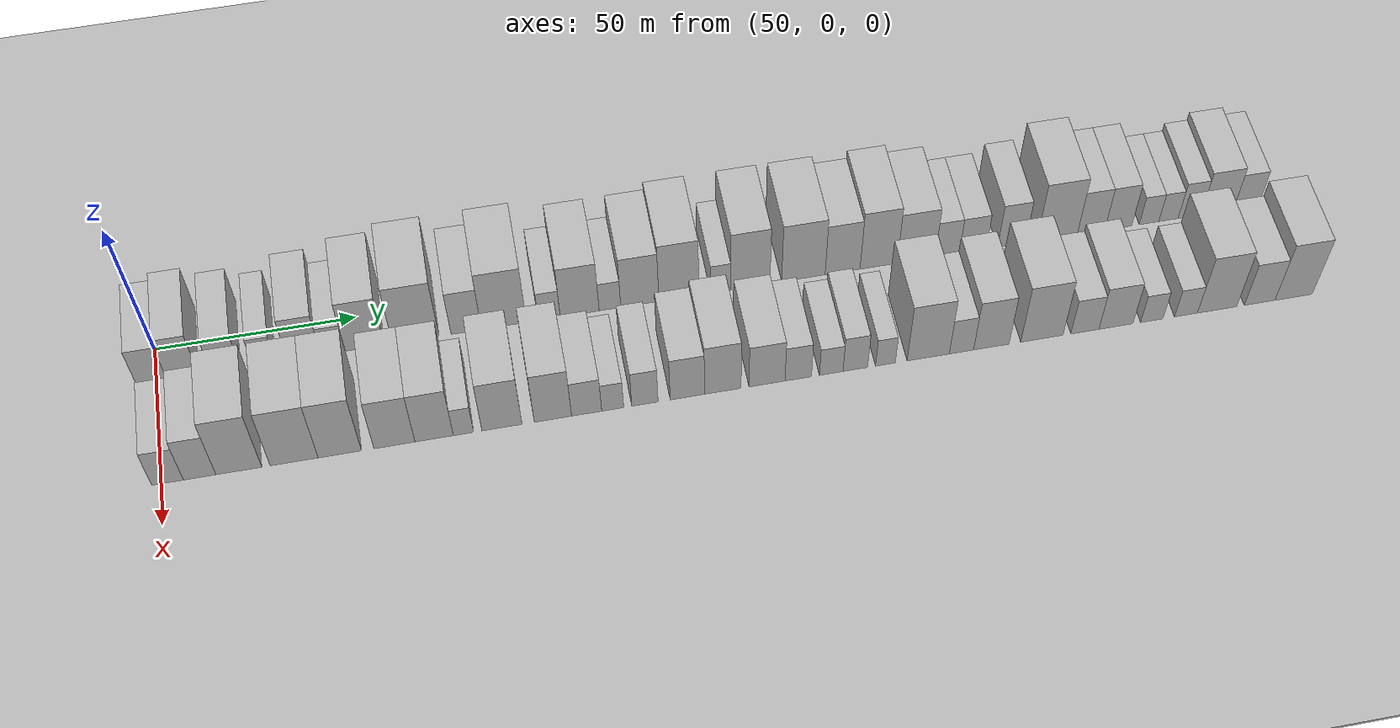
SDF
<sdf version="1.6">
 <world name="default">
  <include><name>ground_plane_1</name><uri>model://HANNAS_ground_plane</uri></include>
  <include>
   <name>ground_plane_2</name>
   <uri>model://HANNAS_ground_plane</uri>
   <pose>100 0 0  0 0 0</pose>
  </include>
  <model name="building_33">
   <static>1</static>
   <pose>50.0000 -0.9373 0 0.000000 0.000000 0.000000</pose>
   <link name="link">
    <pose>0 0 7.50 0 0 0</pose>
    <collision name="collision"><geometry><box><size>20.0000 7.4293 15.0000</size></box></geometry></collision>
    <visual name="visual">
     <cast_shadows>0</cast_shadows>
     <geometry><box><size>20.0000 7.4293 15.0000</size></box></geometry>
     <material>
      <script>
       <uri>model://HANNAS_wall/materials/scripts</uri>
       <uri>model://HANNAS_wall/materials/textures</uri>
       <name>vrc/HANNAS_wall</name>
      </script>
     </material>
    </visual>
   </link>
  </model>
  <model name="building_34">
   <static>1</static>
   <pose>50.0000 6.6551 0 0.000000 0.000000 0.000000</pose>
   <link name="link">
    <pose>0 0 9.00 0 0 0</pose>
    <collision name="collision"><geometry><box><size>20.0000 7.7553 18.0000</size></box></geometry></collision>
    <visual name="visual">
     <cast_shadows>0</cast_shadows>
     <geometry><box><size>20.0000 7.7553 18.0000</size></box></geometry>
     <material>
      <script>
       <uri>model://HANNAS_wall/materials/scripts</uri>
       <uri>model://HANNAS_wall/materials/textures</uri>
       <name>vrc/HANNAS_wall</name>
      </script>
     </material>
    </visual>
   </link>
  </model>
  <model name="building_35">
   <static>1</static>
   <pose>50.0000 17.1252 0 0.000000 0.000000 0.000000</pose>
   <link name="link">
    <pose>0 0 7.50 0 0 0</pose>
    <collision name="collision"><geometry><box><size>20.0000 7.1849 15.0000</size></box></geometry></collision>
    <visual name="visual">
     <cast_shadows>0</cast_shadows>
     <geometry><box><size>20.0000 7.1849 15.0000</size></box></geometry>
     <material>
      <script>
       <uri>model://HANNAS_wall/materials/scripts</uri>
       <uri>model://HANNAS_wall/materials/textures</uri>
       <name>vrc/HANNAS_wall</name>
      </script>
     </material>
    </visual>
   </link>
  </model>
  <model name="building_36">
   <static>1</static>
   <pose>50.0000 26.4992 0 0.000000 0.000000 0.000000</pose>
   <link name="link">
    <pose>0 0 6.00 0 0 0</pose>
    <collision name="collision"><geometry><box><size>20.0000 5.5631 12.0000</size></box></geometry></collision>
    <visual name="visual">
     <cast_shadows>0</cast_shadows>
     <geometry><box><size>20.0000 5.5631 12.0000</size></box></geometry>
     <material>
      <script>
       <uri>model://HANNAS_wall/materials/scripts</uri>
       <uri>model://HANNAS_wall/materials/textures</uri>
       <name>vrc/HANNAS_wall</name>
      </script>
     </material>
    </visual>
   </link>
  </model>
  <model name="building_37">
   <static>1</static>
   <pose>50.0000 36.3989 0 0.000000 0.000000 0.000000</pose>
   <link name="link">
    <pose>0 0 9.00 0 0 0</pose>
    <collision name="collision"><geometry><box><size>20.0000 8.2364 18.0000</size></box></geometry></collision>
    <visual name="visual">
     <cast_shadows>0</cast_shadows>
     <geometry><box><size>20.0000 8.2364 18.0000</size></box></geometry>
     <material>
      <script>
       <uri>model://HANNAS_wall/materials/scripts</uri>
       <uri>model://HANNAS_wall/materials/textures</uri>
       <name>vrc/HANNAS_wall</name>
      </script>
     </material>
    </visual>
   </link>
  </model>
  <model name="building_38">
   <static>1</static>
   <pose>50.0000 43.5059 0 0.000000 0.000000 0.000000</pose>
   <link name="link">
    <pose>0 0 6.00 0 0 0</pose>
    <collision name="collision"><geometry><box><size>20.0000 5.9776 12.0000</size></box></geometry></collision>
    <visual name="visual">
     <cast_shadows>0</cast_shadows>
     <geometry><box><size>20.0000 5.9776 12.0000</size></box></geometry>
     <material>
      <script>
       <uri>model://HANNAS_wall/materials/scripts</uri>
       <uri>model://HANNAS_wall/materials/textures</uri>
       <name>vrc/HANNAS_wall</name>
      </script>
     </material>
    </visual>
   </link>
  </model>
  <model name="building_39">
   <static>1</static>
   <pose>50.0000 51.3330 0 0.000000 0.000000 0.000000</pose>
   <link name="link">
    <pose>0 0 10.50 0 0 0</pose>
    <collision name="collision"><geometry><box><size>20.0000 9.6765 21.0000</size></box></geometry></collision>
    <visual name="visual">
     <cast_shadows>0</cast_shadows>
     <geometry><box><size>20.0000 9.6765 21.0000</size></box></geometry>
     <material>
      <script>
       <uri>model://HANNAS_wall/materials/scripts</uri>
       <uri>model://HANNAS_wall/materials/textures</uri>
       <name>vrc/HANNAS_wall</name>
      </script>
     </material>
    </visual>
   </link>
  </model>
  <model name="building_40">
   <static>1</static>
   <pose>50.0000 63.9703 0 0.000000 0.000000 0.000000</pose>
   <link name="link">
    <pose>0 0 12.00 0 0 0</pose>
    <collision name="collision"><geometry><box><size>20.0000 11.5981 24.0000</size></box></geometry></collision>
    <visual name="visual">
     <cast_shadows>0</cast_shadows>
     <geometry><box><size>20.0000 11.5981 24.0000</size></box></geometry>
     <material>
      <script>
       <uri>model://HANNAS_wall/materials/scripts</uri>
       <uri>model://HANNAS_wall/materials/textures</uri>
       <name>vrc/HANNAS_wall</name>
      </script>
     </material>
    </visual>
   </link>
  </model>
  <model name="building_41">
   <static>1</static>
   <pose>50.0000 76.5834 0 0.000000 0.000000 0.000000</pose>
   <link name="link">
    <pose>0 0 9.00 0 0 0</pose>
    <collision name="collision"><geometry><box><size>20.0000 7.6281 18.0000</size></box></geometry></collision>
    <visual name="visual">
     <cast_shadows>0</cast_shadows>
     <geometry><box><size>20.0000 7.6281 18.0000</size></box></geometry>
     <material>
      <script>
       <uri>model://HANNAS_wall/materials/scripts</uri>
       <uri>model://HANNAS_wall/materials/textures</uri>
       <name>vrc/HANNAS_wall</name>
      </script>
     </material>
    </visual>
   </link>
  </model>
  <model name="building_42">
   <static>1</static>
   <pose>50.0000 86.0288 0 0.000000 0.000000 0.000000</pose>
   <link name="link">
    <pose>0 0 12.00 0 0 0</pose>
    <collision name="collision"><geometry><box><size>20.0000 11.2628 24.0000</size></box></geometry></collision>
    <visual name="visual">
     <cast_shadows>0</cast_shadows>
     <geometry><box><size>20.0000 11.2628 24.0000</size></box></geometry>
     <material>
      <script>
       <uri>model://HANNAS_wall/materials/scripts</uri>
       <uri>model://HANNAS_wall/materials/textures</uri>
       <name>vrc/HANNAS_wall</name>
      </script>
     </material>
    </visual>
   </link>
  </model>
  <model name="building_43">
   <static>1</static>
   <pose>50.0000 97.4271 0 0.000000 0.000000 0.000000</pose>
   <link name="link">
    <pose>0 0 6.00 0 0 0</pose>
    <collision name="collision"><geometry><box><size>20.0000 5.5338 12.0000</size></box></geometry></collision>
    <visual name="visual">
     <cast_shadows>0</cast_shadows>
     <geometry><box><size>20.0000 5.5338 12.0000</size></box></geometry>
     <material>
      <script>
       <uri>model://HANNAS_wall/materials/scripts</uri>
       <uri>model://HANNAS_wall/materials/textures</uri>
       <name>vrc/HANNAS_wall</name>
      </script>
     </material>
    </visual>
   </link>
  </model>
  <model name="building_44">
   <static>1</static>
   <pose>50.0000 105.1059 0 0.000000 0.000000 0.000000</pose>
   <link name="link">
    <pose>0 0 10.50 0 0 0</pose>
    <collision name="collision"><geometry><box><size>20.0000 9.8237 21.0000</size></box></geometry></collision>
    <visual name="visual">
     <cast_shadows>0</cast_shadows>
     <geometry><box><size>20.0000 9.8237 21.0000</size></box></geometry>
     <material>
      <script>
       <uri>model://HANNAS_wall/materials/scripts</uri>
       <uri>model://HANNAS_wall/materials/textures</uri>
       <name>vrc/HANNAS_wall</name>
      </script>
     </material>
    </visual>
   </link>
  </model>
  <model name="building_45">
   <static>1</static>
   <pose>50.0000 112.7721 0 0.000000 0.000000 0.000000</pose>
   <link name="link">
    <pose>0 0 6.00 0 0 0</pose>
    <collision name="collision"><geometry><box><size>20.0000 5.5086 12.0000</size></box></geometry></collision>
    <visual name="visual">
     <cast_shadows>0</cast_shadows>
     <geometry><box><size>20.0000 5.5086 12.0000</size></box></geometry>
     <material>
      <script>
       <uri>model://HANNAS_wall/materials/scripts</uri>
       <uri>model://HANNAS_wall/materials/textures</uri>
       <name>vrc/HANNAS_wall</name>
      </script>
     </material>
    </visual>
   </link>
  </model>
  <model name="building_46">
   <static>1</static>
   <pose>50.0000 120.3846 0 0.000000 0.000000 0.000000</pose>
   <link name="link">
    <pose>0 0 10.50 0 0 0</pose>
    <collision name="collision"><geometry><box><size>20.0000 9.7165 21.0000</size></box></geometry></collision>
    <visual name="visual">
     <cast_shadows>0</cast_shadows>
     <geometry><box><size>20.0000 9.7165 21.0000</size></box></geometry>
     <material>
      <script>
       <uri>model://HANNAS_wall/materials/scripts</uri>
       <uri>model://HANNAS_wall/materials/textures</uri>
       <name>vrc/HANNAS_wall</name>
      </script>
     </material>
    </visual>
   </link>
  </model>
  <model name="building_47">
   <static>1</static>
   <pose>50.0000 130.3578 0 0.000000 0.000000 0.000000</pose>
   <link name="link">
    <pose>0 0 12.00 0 0 0</pose>
    <collision name="collision"><geometry><box><size>20.0000 10.2298 24.0000</size></box></geometry></collision>
    <visual name="visual">
     <cast_shadows>0</cast_shadows>
     <geometry><box><size>20.0000 10.2298 24.0000</size></box></geometry>
     <material>
      <script>
       <uri>model://HANNAS_wall/materials/scripts</uri>
       <uri>model://HANNAS_wall/materials/textures</uri>
       <name>vrc/HANNAS_wall</name>
      </script>
     </material>
    </visual>
   </link>
  </model>
  <model name="building_48">
   <static>1</static>
   <pose>50.0000 141.0433 0 0.000000 0.000000 0.000000</pose>
   <link name="link">
    <pose>0 0 6.00 0 0 0</pose>
    <collision name="collision"><geometry><box><size>20.0000 5.1412 12.0000</size></box></geometry></collision>
    <visual name="visual">
     <cast_shadows>0</cast_shadows>
     <geometry><box><size>20.0000 5.1412 12.0000</size></box></geometry>
     <material>
      <script>
       <uri>model://HANNAS_wall/materials/scripts</uri>
       <uri>model://HANNAS_wall/materials/textures</uri>
       <name>vrc/HANNAS_wall</name>
      </script>
     </material>
    </visual>
   </link>
  </model>
  <model name="building_49">
   <static>1</static>
   <pose>50.0000 148.6736 0 0.000000 0.000000 0.000000</pose>
   <link name="link">
    <pose>0 0 12.00 0 0 0</pose>
    <collision name="collision"><geometry><box><size>20.0000 10.1195 24.0000</size></box></geometry></collision>
    <visual name="visual">
     <cast_shadows>0</cast_shadows>
     <geometry><box><size>20.0000 10.1195 24.0000</size></box></geometry>
     <material>
      <script>
       <uri>model://HANNAS_wall/materials/scripts</uri>
       <uri>model://HANNAS_wall/materials/textures</uri>
       <name>vrc/HANNAS_wall</name>
      </script>
     </material>
    </visual>
   </link>
  </model>
  <model name="building_50">
   <static>1</static>
   <pose>50.0000 162.3706 0 0.000000 0.000000 0.000000</pose>
   <link name="link">
    <pose>0 0 12.00 0 0 0</pose>
    <collision name="collision"><geometry><box><size>20.0000 11.2746 24.0000</size></box></geometry></collision>
    <visual name="visual">
     <cast_shadows>0</cast_shadows>
     <geometry><box><size>20.0000 11.2746 24.0000</size></box></geometry>
     <material>
      <script>
       <uri>model://HANNAS_wall/materials/scripts</uri>
       <uri>model://HANNAS_wall/materials/textures</uri>
       <name>vrc/HANNAS_wall</name>
      </script>
     </material>
    </visual>
   </link>
  </model>
  <model name="building_51">
   <static>1</static>
   <pose>50.0000 172.5475 0 0.000000 0.000000 0.000000</pose>
   <link name="link">
    <pose>0 0 10.50 0 0 0</pose>
    <collision name="collision"><geometry><box><size>20.0000 9.0792 21.0000</size></box></geometry></collision>
    <visual name="visual">
     <cast_shadows>0</cast_shadows>
     <geometry><box><size>20.0000 9.0792 21.0000</size></box></geometry>
     <material>
      <script>
       <uri>model://HANNAS_wall/materials/scripts</uri>
       <uri>model://HANNAS_wall/materials/textures</uri>
       <name>vrc/HANNAS_wall</name>
      </script>
     </material>
    </visual>
   </link>
  </model>
  <model name="building_52">
   <static>1</static>
   <pose>50.0000 181.9279 0 0.000000 0.000000 0.000000</pose>
   <link name="link">
    <pose>0 0 12.00 0 0 0</pose>
    <collision name="collision"><geometry><box><size>20.0000 9.6816 24.0000</size></box></geometry></collision>
    <visual name="visual">
     <cast_shadows>0</cast_shadows>
     <geometry><box><size>20.0000 9.6816 24.0000</size></box></geometry>
     <material>
      <script>
       <uri>model://HANNAS_wall/materials/scripts</uri>
       <uri>model://HANNAS_wall/materials/textures</uri>
       <name>vrc/HANNAS_wall</name>
      </script>
     </material>
    </visual>
   </link>
  </model>
  <model name="building_53">
   <static>1</static>
   <pose>50.0000 191.7421 0 0.000000 0.000000 0.000000</pose>
   <link name="link">
    <pose>0 0 10.50 0 0 0</pose>
    <collision name="collision"><geometry><box><size>20.0000 9.9468 21.0000</size></box></geometry></collision>
    <visual name="visual">
     <cast_shadows>0</cast_shadows>
     <geometry><box><size>20.0000 9.9468 21.0000</size></box></geometry>
     <material>
      <script>
       <uri>model://HANNAS_wall/materials/scripts</uri>
       <uri>model://HANNAS_wall/materials/textures</uri>
       <name>vrc/HANNAS_wall</name>
      </script>
     </material>
    </visual>
   </link>
  </model>
  <model name="building_54">
   <static>1</static>
   <pose>50.0000 199.9086 0 0.000000 0.000000 0.000000</pose>
   <link name="link">
    <pose>0 0 7.50 0 0 0</pose>
    <collision name="collision"><geometry><box><size>20.0000 6.3862 15.0000</size></box></geometry></collision>
    <visual name="visual">
     <cast_shadows>0</cast_shadows>
     <geometry><box><size>20.0000 6.3862 15.0000</size></box></geometry>
     <material>
      <script>
       <uri>model://HANNAS_wall/materials/scripts</uri>
       <uri>model://HANNAS_wall/materials/textures</uri>
       <name>vrc/HANNAS_wall</name>
      </script>
     </material>
    </visual>
   </link>
  </model>
  <model name="building_55">
   <static>1</static>
   <pose>50.0000 206.6260 0 0.000000 0.000000 0.000000</pose>
   <link name="link">
    <pose>0 0 7.50 0 0 0</pose>
    <collision name="collision"><geometry><box><size>20.0000 7.0486 15.0000</size></box></geometry></collision>
    <visual name="visual">
     <cast_shadows>0</cast_shadows>
     <geometry><box><size>20.0000 7.0486 15.0000</size></box></geometry>
     <material>
      <script>
       <uri>model://HANNAS_wall/materials/scripts</uri>
       <uri>model://HANNAS_wall/materials/textures</uri>
       <name>vrc/HANNAS_wall</name>
      </script>
     </material>
    </visual>
   </link>
  </model>
  <model name="building_56">
   <static>1</static>
   <pose>50.0000 216.8611 0 0.000000 0.000000 0.000000</pose>
   <link name="link">
    <pose>0 0 9.00 0 0 0</pose>
    <collision name="collision"><geometry><box><size>20.0000 7.4216 18.0000</size></box></geometry></collision>
    <visual name="visual">
     <cast_shadows>0</cast_shadows>
     <geometry><box><size>20.0000 7.4216 18.0000</size></box></geometry>
     <material>
      <script>
       <uri>model://HANNAS_wall/materials/scripts</uri>
       <uri>model://HANNAS_wall/materials/textures</uri>
       <name>vrc/HANNAS_wall</name>
      </script>
     </material>
    </visual>
   </link>
  </model>
  <model name="building_57">
   <static>1</static>
   <pose>50.0000 228.9514 0 0.000000 0.000000 0.000000</pose>
   <link name="link">
    <pose>0 0 12.00 0 0 0</pose>
    <collision name="collision"><geometry><box><size>20.0000 10.7588 24.0000</size></box></geometry></collision>
    <visual name="visual">
     <cast_shadows>0</cast_shadows>
     <geometry><box><size>20.0000 10.7588 24.0000</size></box></geometry>
     <material>
      <script>
       <uri>model://HANNAS_wall/materials/scripts</uri>
       <uri>model://HANNAS_wall/materials/textures</uri>
       <name>vrc/HANNAS_wall</name>
      </script>
     </material>
    </visual>
   </link>
  </model>
  <model name="building_58">
   <static>1</static>
   <pose>50.0000 237.9927 0 0.000000 0.000000 0.000000</pose>
   <link name="link">
    <pose>0 0 9.00 0 0 0</pose>
    <collision name="collision"><geometry><box><size>20.0000 7.3238 18.0000</size></box></geometry></collision>
    <visual name="visual">
     <cast_shadows>0</cast_shadows>
     <geometry><box><size>20.0000 7.3238 18.0000</size></box></geometry>
     <material>
      <script>
       <uri>model://HANNAS_wall/materials/scripts</uri>
       <uri>model://HANNAS_wall/materials/textures</uri>
       <name>vrc/HANNAS_wall</name>
      </script>
     </material>
    </visual>
   </link>
  </model>
  <model name="building_59">
   <static>1</static>
   <pose>50.0000 245.2843 0 0.000000 0.000000 0.000000</pose>
   <link name="link">
    <pose>0 0 9.00 0 0 0</pose>
    <collision name="collision"><geometry><box><size>20.0000 7.2594 18.0000</size></box></geometry></collision>
    <visual name="visual">
     <cast_shadows>0</cast_shadows>
     <geometry><box><size>20.0000 7.2594 18.0000</size></box></geometry>
     <material>
      <script>
       <uri>model://HANNAS_wall/materials/scripts</uri>
       <uri>model://HANNAS_wall/materials/textures</uri>
       <name>vrc/HANNAS_wall</name>
      </script>
     </material>
    </visual>
   </link>
  </model>
  <model name="building_60">
   <static>1</static>
   <pose>50.0000 253.5499 0 0.000000 0.000000 0.000000</pose>
   <link name="link">
    <pose>0 0 6.00 0 0 0</pose>
    <collision name="collision"><geometry><box><size>20.0000 5.2718 12.0000</size></box></geometry></collision>
    <visual name="visual">
     <cast_shadows>0</cast_shadows>
     <geometry><box><size>20.0000 5.2718 12.0000</size></box></geometry>
     <material>
      <script>
       <uri>model://HANNAS_wall/materials/scripts</uri>
       <uri>model://HANNAS_wall/materials/textures</uri>
       <name>vrc/HANNAS_wall</name>
      </script>
     </material>
    </visual>
   </link>
  </model>
  <model name="building_61">
   <static>1</static>
   <pose>50.0000 258.7676 0 0.000000 0.000000 0.000000</pose>
   <link name="link">
    <pose>0 0 6.00 0 0 0</pose>
    <collision name="collision"><geometry><box><size>20.0000 5.1638 12.0000</size></box></geometry></collision>
    <visual name="visual">
     <cast_shadows>0</cast_shadows>
     <geometry><box><size>20.0000 5.1638 12.0000</size></box></geometry>
     <material>
      <script>
       <uri>model://HANNAS_wall/materials/scripts</uri>
       <uri>model://HANNAS_wall/materials/textures</uri>
       <name>vrc/HANNAS_wall</name>
      </script>
     </material>
    </visual>
   </link>
  </model>
  <model name="building_62">
   <static>1</static>
   <pose>50.0000 264.3996 0 0.000000 0.000000 0.000000</pose>
   <link name="link">
    <pose>0 0 7.50 0 0 0</pose>
    <collision name="collision"><geometry><box><size>20.0000 6.1002 15.0000</size></box></geometry></collision>
    <visual name="visual">
     <cast_shadows>0</cast_shadows>
     <geometry><box><size>20.0000 6.1002 15.0000</size></box></geometry>
     <material>
      <script>
       <uri>model://HANNAS_wall/materials/scripts</uri>
       <uri>model://HANNAS_wall/materials/textures</uri>
       <name>vrc/HANNAS_wall</name>
      </script>
     </material>
    </visual>
   </link>
  </model>
  <model name="building_63">
   <static>1</static>
   <pose>50.0000 271.8828 0 0.000000 0.000000 0.000000</pose>
   <link name="link">
    <pose>0 0 9.00 0 0 0</pose>
    <collision name="collision"><geometry><box><size>20.0000 8.8662 18.0000</size></box></geometry></collision>
    <visual name="visual">
     <cast_shadows>0</cast_shadows>
     <geometry><box><size>20.0000 8.8662 18.0000</size></box></geometry>
     <material>
      <script>
       <uri>model://HANNAS_wall/materials/scripts</uri>
       <uri>model://HANNAS_wall/materials/textures</uri>
       <name>vrc/HANNAS_wall</name>
      </script>
     </material>
    </visual>
   </link>
  </model>
  <model name="building_64">
   <static>1</static>
   <pose>50.0000 279.7023 0 0.000000 0.000000 0.000000</pose>
   <link name="link">
    <pose>0 0 7.50 0 0 0</pose>
    <collision name="collision"><geometry><box><size>20.0000 6.7728 15.0000</size></box></geometry></collision>
    <visual name="visual">
     <cast_shadows>0</cast_shadows>
     <geometry><box><size>20.0000 6.7728 15.0000</size></box></geometry>
     <material>
      <script>
       <uri>model://HANNAS_wall/materials/scripts</uri>
       <uri>model://HANNAS_wall/materials/textures</uri>
       <name>vrc/HANNAS_wall</name>
      </script>
     </material>
    </visual>
   </link>
  </model>
  <model name="building_96">
   <static>1</static>
   <pose>79.0000 1.7501 0 0.000000 0.000000 0.000000</pose>
   <link name="link">
    <pose>0 0 7.50 0 0 0</pose>
    <collision name="collision"><geometry><box><size>20.0000 7.4514 15.0000</size></box></geometry></collision>
    <visual name="visual">
     <cast_shadows>0</cast_shadows>
     <geometry><box><size>20.0000 7.4514 15.0000</size></box></geometry>
     <material>
      <script>
       <uri>model://HANNAS_wall/materials/scripts</uri>
       <uri>model://HANNAS_wall/materials/textures</uri>
       <name>vrc/HANNAS_wall</name>
      </script>
     </material>
    </visual>
   </link>
  </model>
  <model name="building_97">
   <static>1</static>
   <pose>79.0000 9.3007 0 0.000000 0.000000 0.000000</pose>
   <link name="link">
    <pose>0 0 9.00 0 0 0</pose>
    <collision name="collision"><geometry><box><size>20.0000 7.6499 18.0000</size></box></geometry></collision>
    <visual name="visual">
     <cast_shadows>0</cast_shadows>
     <geometry><box><size>20.0000 7.6499 18.0000</size></box></geometry>
     <material>
      <script>
       <uri>model://HANNAS_wall/materials/scripts</uri>
       <uri>model://HANNAS_wall/materials/textures</uri>
       <name>vrc/HANNAS_wall</name>
      </script>
     </material>
    </visual>
   </link>
  </model>
  <model name="building_98">
   <static>1</static>
   <pose>79.0000 18.5533 0 0.000000 0.000000 0.000000</pose>
   <link name="link">
    <pose>0 0 12.00 0 0 0</pose>
    <collision name="collision"><geometry><box><size>20.0000 10.8552 24.0000</size></box></geometry></collision>
    <visual name="visual">
     <cast_shadows>0</cast_shadows>
     <geometry><box><size>20.0000 10.8552 24.0000</size></box></geometry>
     <material>
      <script>
       <uri>model://HANNAS_wall/materials/scripts</uri>
       <uri>model://HANNAS_wall/materials/textures</uri>
       <name>vrc/HANNAS_wall</name>
      </script>
     </material>
    </visual>
   </link>
  </model>
  <model name="building_99">
   <static>1</static>
   <pose>79.0000 31.6939 0 0.000000 0.000000 0.000000</pose>
   <link name="link">
    <pose>0 0 12.00 0 0 0</pose>
    <collision name="collision"><geometry><box><size>20.0000 11.4260 24.0000</size></box></geometry></collision>
    <visual name="visual">
     <cast_shadows>0</cast_shadows>
     <geometry><box><size>20.0000 11.4260 24.0000</size></box></geometry>
     <material>
      <script>
       <uri>model://HANNAS_wall/materials/scripts</uri>
       <uri>model://HANNAS_wall/materials/textures</uri>
       <name>vrc/HANNAS_wall</name>
      </script>
     </material>
    </visual>
   </link>
  </model>
  <model name="building_100">
   <static>1</static>
   <pose>79.0000 42.5841 0 0.000000 0.000000 0.000000</pose>
   <link name="link">
    <pose>0 0 12.00 0 0 0</pose>
    <collision name="collision"><geometry><box><size>20.0000 10.3545 24.0000</size></box></geometry></collision>
    <visual name="visual">
     <cast_shadows>0</cast_shadows>
     <geometry><box><size>20.0000 10.3545 24.0000</size></box></geometry>
     <material>
      <script>
       <uri>model://HANNAS_wall/materials/scripts</uri>
       <uri>model://HANNAS_wall/materials/textures</uri>
       <name>vrc/HANNAS_wall</name>
      </script>
     </material>
    </visual>
   </link>
  </model>
  <model name="building_101">
   <static>1</static>
   <pose>79.0000 55.7032 0 0.000000 0.000000 0.000000</pose>
   <link name="link">
    <pose>0 0 10.50 0 0 0</pose>
    <collision name="collision"><geometry><box><size>20.0000 9.8837 21.0000</size></box></geometry></collision>
    <visual name="visual">
     <cast_shadows>0</cast_shadows>
     <geometry><box><size>20.0000 9.8837 21.0000</size></box></geometry>
     <material>
      <script>
       <uri>model://HANNAS_wall/materials/scripts</uri>
       <uri>model://HANNAS_wall/materials/textures</uri>
       <name>vrc/HANNAS_wall</name>
      </script>
     </material>
    </visual>
   </link>
  </model>
  <model name="building_102">
   <static>1</static>
   <pose>79.0000 65.2813 0 0.000000 0.000000 0.000000</pose>
   <link name="link">
    <pose>0 0 10.50 0 0 0</pose>
    <collision name="collision"><geometry><box><size>20.0000 9.2724 21.0000</size></box></geometry></collision>
    <visual name="visual">
     <cast_shadows>0</cast_shadows>
     <geometry><box><size>20.0000 9.2724 21.0000</size></box></geometry>
     <material>
      <script>
       <uri>model://HANNAS_wall/materials/scripts</uri>
       <uri>model://HANNAS_wall/materials/textures</uri>
       <name>vrc/HANNAS_wall</name>
      </script>
     </material>
    </visual>
   </link>
  </model>
  <model name="building_103">
   <static>1</static>
   <pose>79.0000 72.3687 0 0.000000 0.000000 0.000000</pose>
   <link name="link">
    <pose>0 0 6.00 0 0 0</pose>
    <collision name="collision"><geometry><box><size>20.0000 4.9022 12.0000</size></box></geometry></collision>
    <visual name="visual">
     <cast_shadows>0</cast_shadows>
     <geometry><box><size>20.0000 4.9022 12.0000</size></box></geometry>
     <material>
      <script>
       <uri>model://HANNAS_wall/materials/scripts</uri>
       <uri>model://HANNAS_wall/materials/textures</uri>
       <name>vrc/HANNAS_wall</name>
      </script>
     </material>
    </visual>
   </link>
  </model>
  <model name="building_104">
   <static>1</static>
   <pose>79.0000 81.7015 0 0.000000 0.000000 0.000000</pose>
   <link name="link">
    <pose>0 0 10.50 0 0 0</pose>
    <collision name="collision"><geometry><box><size>20.0000 9.7635 21.0000</size></box></geometry></collision>
    <visual name="visual">
     <cast_shadows>0</cast_shadows>
     <geometry><box><size>20.0000 9.7635 21.0000</size></box></geometry>
     <material>
      <script>
       <uri>model://HANNAS_wall/materials/scripts</uri>
       <uri>model://HANNAS_wall/materials/textures</uri>
       <name>vrc/HANNAS_wall</name>
      </script>
     </material>
    </visual>
   </link>
  </model>
  <model name="building_105">
   <static>1</static>
   <pose>79.0000 94.1449 0 0.000000 0.000000 0.000000</pose>
   <link name="link">
    <pose>0 0 10.50 0 0 0</pose>
    <collision name="collision"><geometry><box><size>20.0000 9.1231 21.0000</size></box></geometry></collision>
    <visual name="visual">
     <cast_shadows>0</cast_shadows>
     <geometry><box><size>20.0000 9.1231 21.0000</size></box></geometry>
     <material>
      <script>
       <uri>model://HANNAS_wall/materials/scripts</uri>
       <uri>model://HANNAS_wall/materials/textures</uri>
       <name>vrc/HANNAS_wall</name>
      </script>
     </material>
    </visual>
   </link>
  </model>
  <model name="building_106">
   <static>1</static>
   <pose>79.0000 102.3994 0 0.000000 0.000000 0.000000</pose>
   <link name="link">
    <pose>0 0 7.50 0 0 0</pose>
    <collision name="collision"><geometry><box><size>20.0000 7.3860 15.0000</size></box></geometry></collision>
    <visual name="visual">
     <cast_shadows>0</cast_shadows>
     <geometry><box><size>20.0000 7.3860 15.0000</size></box></geometry>
     <material>
      <script>
       <uri>model://HANNAS_wall/materials/scripts</uri>
       <uri>model://HANNAS_wall/materials/textures</uri>
       <name>vrc/HANNAS_wall</name>
      </script>
     </material>
    </visual>
   </link>
  </model>
  <model name="building_107">
   <static>1</static>
   <pose>79.0000 108.7939 0 0.000000 0.000000 0.000000</pose>
   <link name="link">
    <pose>0 0 6.00 0 0 0</pose>
    <collision name="collision"><geometry><box><size>20.0000 5.4031 12.0000</size></box></geometry></collision>
    <visual name="visual">
     <cast_shadows>0</cast_shadows>
     <geometry><box><size>20.0000 5.4031 12.0000</size></box></geometry>
     <material>
      <script>
       <uri>model://HANNAS_wall/materials/scripts</uri>
       <uri>model://HANNAS_wall/materials/textures</uri>
       <name>vrc/HANNAS_wall</name>
      </script>
     </material>
    </visual>
   </link>
  </model>
  <model name="building_108">
   <static>1</static>
   <pose>79.0000 116.7424 0 0.000000 0.000000 0.000000</pose>
   <link name="link">
    <pose>0 0 7.50 0 0 0</pose>
    <collision name="collision"><geometry><box><size>20.0000 6.4939 15.0000</size></box></geometry></collision>
    <visual name="visual">
     <cast_shadows>0</cast_shadows>
     <geometry><box><size>20.0000 6.4939 15.0000</size></box></geometry>
     <material>
      <script>
       <uri>model://HANNAS_wall/materials/scripts</uri>
       <uri>model://HANNAS_wall/materials/textures</uri>
       <name>vrc/HANNAS_wall</name>
      </script>
     </material>
    </visual>
   </link>
  </model>
  <model name="building_109">
   <static>1</static>
   <pose>79.0000 127.2621 0 0.000000 0.000000 0.000000</pose>
   <link name="link">
    <pose>0 0 9.00 0 0 0</pose>
    <collision name="collision"><geometry><box><size>20.0000 8.5455 18.0000</size></box></geometry></collision>
    <visual name="visual">
     <cast_shadows>0</cast_shadows>
     <geometry><box><size>20.0000 8.5455 18.0000</size></box></geometry>
     <material>
      <script>
       <uri>model://HANNAS_wall/materials/scripts</uri>
       <uri>model://HANNAS_wall/materials/textures</uri>
       <name>vrc/HANNAS_wall</name>
      </script>
     </material>
    </visual>
   </link>
  </model>
  <model name="building_110">
   <static>1</static>
   <pose>79.0000 136.0524 0 0.000000 0.000000 0.000000</pose>
   <link name="link">
    <pose>0 0 10.50 0 0 0</pose>
    <collision name="collision"><geometry><box><size>20.0000 9.0352 21.0000</size></box></geometry></collision>
    <visual name="visual">
     <cast_shadows>0</cast_shadows>
     <geometry><box><size>20.0000 9.0352 21.0000</size></box></geometry>
     <material>
      <script>
       <uri>model://HANNAS_wall/materials/scripts</uri>
       <uri>model://HANNAS_wall/materials/textures</uri>
       <name>vrc/HANNAS_wall</name>
      </script>
     </material>
    </visual>
   </link>
  </model>
  <model name="building_111">
   <static>1</static>
   <pose>79.0000 147.0600 0 0.000000 0.000000 0.000000</pose>
   <link name="link">
    <pose>0 0 9.00 0 0 0</pose>
    <collision name="collision"><geometry><box><size>20.0000 8.9799 18.0000</size></box></geometry></collision>
    <visual name="visual">
     <cast_shadows>0</cast_shadows>
     <geometry><box><size>20.0000 8.9799 18.0000</size></box></geometry>
     <material>
      <script>
       <uri>model://HANNAS_wall/materials/scripts</uri>
       <uri>model://HANNAS_wall/materials/textures</uri>
       <name>vrc/HANNAS_wall</name>
      </script>
     </material>
    </visual>
   </link>
  </model>
  <model name="building_112">
   <static>1</static>
   <pose>79.0000 154.8701 0 0.000000 0.000000 0.000000</pose>
   <link name="link">
    <pose>0 0 7.50 0 0 0</pose>
    <collision name="collision"><geometry><box><size>20.0000 6.6403 15.0000</size></box></geometry></collision>
    <visual name="visual">
     <cast_shadows>0</cast_shadows>
     <geometry><box><size>20.0000 6.6403 15.0000</size></box></geometry>
     <material>
      <script>
       <uri>model://HANNAS_wall/materials/scripts</uri>
       <uri>model://HANNAS_wall/materials/textures</uri>
       <name>vrc/HANNAS_wall</name>
      </script>
     </material>
    </visual>
   </link>
  </model>
  <model name="building_113">
   <static>1</static>
   <pose>79.0000 163.1587 0 0.000000 0.000000 0.000000</pose>
   <link name="link">
    <pose>0 0 6.00 0 0 0</pose>
    <collision name="collision"><geometry><box><size>20.0000 5.9369 12.0000</size></box></geometry></collision>
    <visual name="visual">
     <cast_shadows>0</cast_shadows>
     <geometry><box><size>20.0000 5.9369 12.0000</size></box></geometry>
     <material>
      <script>
       <uri>model://HANNAS_wall/materials/scripts</uri>
       <uri>model://HANNAS_wall/materials/textures</uri>
       <name>vrc/HANNAS_wall</name>
      </script>
     </material>
    </visual>
   </link>
  </model>
  <model name="building_114">
   <static>1</static>
   <pose>79.0000 169.2243 0 0.000000 0.000000 0.000000</pose>
   <link name="link">
    <pose>0 0 7.50 0 0 0</pose>
    <collision name="collision"><geometry><box><size>20.0000 6.1942 15.0000</size></box></geometry></collision>
    <visual name="visual">
     <cast_shadows>0</cast_shadows>
     <geometry><box><size>20.0000 6.1942 15.0000</size></box></geometry>
     <material>
      <script>
       <uri>model://HANNAS_wall/materials/scripts</uri>
       <uri>model://HANNAS_wall/materials/textures</uri>
       <name>vrc/HANNAS_wall</name>
      </script>
     </material>
    </visual>
   </link>
  </model>
  <model name="building_115">
   <static>1</static>
   <pose>79.0000 176.8245 0 0.000000 0.000000 0.000000</pose>
   <link name="link">
    <pose>0 0 6.00 0 0 0</pose>
    <collision name="collision"><geometry><box><size>20.0000 5.0062 12.0000</size></box></geometry></collision>
    <visual name="visual">
     <cast_shadows>0</cast_shadows>
     <geometry><box><size>20.0000 5.0062 12.0000</size></box></geometry>
     <material>
      <script>
       <uri>model://HANNAS_wall/materials/scripts</uri>
       <uri>model://HANNAS_wall/materials/textures</uri>
       <name>vrc/HANNAS_wall</name>
      </script>
     </material>
    </visual>
   </link>
  </model>
  <model name="building_116">
   <static>1</static>
   <pose>79.0000 187.6856 0 0.000000 0.000000 0.000000</pose>
   <link name="link">
    <pose>0 0 12.00 0 0 0</pose>
    <collision name="collision"><geometry><box><size>20.0000 10.7160 24.0000</size></box></geometry></collision>
    <visual name="visual">
     <cast_shadows>0</cast_shadows>
     <geometry><box><size>20.0000 10.7160 24.0000</size></box></geometry>
     <material>
      <script>
       <uri>model://HANNAS_wall/materials/scripts</uri>
       <uri>model://HANNAS_wall/materials/textures</uri>
       <name>vrc/HANNAS_wall</name>
      </script>
     </material>
    </visual>
   </link>
  </model>
  <model name="building_117">
   <static>1</static>
   <pose>79.0000 196.1436 0 0.000000 0.000000 0.000000</pose>
   <link name="link">
    <pose>0 0 7.50 0 0 0</pose>
    <collision name="collision"><geometry><box><size>20.0000 6.2001 15.0000</size></box></geometry></collision>
    <visual name="visual">
     <cast_shadows>0</cast_shadows>
     <geometry><box><size>20.0000 6.2001 15.0000</size></box></geometry>
     <material>
      <script>
       <uri>model://HANNAS_wall/materials/scripts</uri>
       <uri>model://HANNAS_wall/materials/textures</uri>
       <name>vrc/HANNAS_wall</name>
      </script>
     </material>
    </visual>
   </link>
  </model>
  <model name="building_118">
   <static>1</static>
   <pose>79.0000 203.7829 0 0.000000 0.000000 0.000000</pose>
   <link name="link">
    <pose>0 0 10.50 0 0 0</pose>
    <collision name="collision"><geometry><box><size>20.0000 9.0786 21.0000</size></box></geometry></collision>
    <visual name="visual">
     <cast_shadows>0</cast_shadows>
     <geometry><box><size>20.0000 9.0786 21.0000</size></box></geometry>
     <material>
      <script>
       <uri>model://HANNAS_wall/materials/scripts</uri>
       <uri>model://HANNAS_wall/materials/textures</uri>
       <name>vrc/HANNAS_wall</name>
      </script>
     </material>
    </visual>
   </link>
  </model>
  <model name="building_119">
   <static>1</static>
   <pose>79.0000 216.7630 0 0.000000 0.000000 0.000000</pose>
   <link name="link">
    <pose>0 0 12.00 0 0 0</pose>
    <collision name="collision"><geometry><box><size>20.0000 10.8816 24.0000</size></box></geometry></collision>
    <visual name="visual">
     <cast_shadows>0</cast_shadows>
     <geometry><box><size>20.0000 10.8816 24.0000</size></box></geometry>
     <material>
      <script>
       <uri>model://HANNAS_wall/materials/scripts</uri>
       <uri>model://HANNAS_wall/materials/textures</uri>
       <name>vrc/HANNAS_wall</name>
      </script>
     </material>
    </visual>
   </link>
  </model>
  <model name="building_120">
   <static>1</static>
   <pose>79.0000 227.8280 0 0.000000 0.000000 0.000000</pose>
   <link name="link">
    <pose>0 0 7.50 0 0 0</pose>
    <collision name="collision"><geometry><box><size>20.0000 7.2485 15.0000</size></box></geometry></collision>
    <visual name="visual">
     <cast_shadows>0</cast_shadows>
     <geometry><box><size>20.0000 7.2485 15.0000</size></box></geometry>
     <material>
      <script>
       <uri>model://HANNAS_wall/materials/scripts</uri>
       <uri>model://HANNAS_wall/materials/textures</uri>
       <name>vrc/HANNAS_wall</name>
      </script>
     </material>
    </visual>
   </link>
  </model>
  <model name="building_121">
   <static>1</static>
   <pose>79.0000 235.8670 0 0.000000 0.000000 0.000000</pose>
   <link name="link">
    <pose>0 0 9.00 0 0 0</pose>
    <collision name="collision"><geometry><box><size>20.0000 8.8295 18.0000</size></box></geometry></collision>
    <visual name="visual">
     <cast_shadows>0</cast_shadows>
     <geometry><box><size>20.0000 8.8295 18.0000</size></box></geometry>
     <material>
      <script>
       <uri>model://HANNAS_wall/materials/scripts</uri>
       <uri>model://HANNAS_wall/materials/textures</uri>
       <name>vrc/HANNAS_wall</name>
      </script>
     </material>
    </visual>
   </link>
  </model>
  <model name="building_122">
   <static>1</static>
   <pose>79.0000 245.1891 0 0.000000 0.000000 0.000000</pose>
   <link name="link">
    <pose>0 0 6.00 0 0 0</pose>
    <collision name="collision"><geometry><box><size>20.0000 5.8147 12.0000</size></box></geometry></collision>
    <visual name="visual">
     <cast_shadows>0</cast_shadows>
     <geometry><box><size>20.0000 5.8147 12.0000</size></box></geometry>
     <material>
      <script>
       <uri>model://HANNAS_wall/materials/scripts</uri>
       <uri>model://HANNAS_wall/materials/textures</uri>
       <name>vrc/HANNAS_wall</name>
      </script>
     </material>
    </visual>
   </link>
  </model>
  <model name="building_123">
   <static>1</static>
   <pose>79.0000 254.0936 0 0.000000 0.000000 0.000000</pose>
   <link name="link">
    <pose>0 0 6.00 0 0 0</pose>
    <collision name="collision"><geometry><box><size>20.0000 5.9942 12.0000</size></box></geometry></collision>
    <visual name="visual">
     <cast_shadows>0</cast_shadows>
     <geometry><box><size>20.0000 5.9942 12.0000</size></box></geometry>
     <material>
      <script>
       <uri>model://HANNAS_wall/materials/scripts</uri>
       <uri>model://HANNAS_wall/materials/textures</uri>
       <name>vrc/HANNAS_wall</name>
      </script>
     </material>
    </visual>
   </link>
  </model>
  <model name="building_124">
   <static>1</static>
   <pose>79.0000 262.2412 0 0.000000 0.000000 0.000000</pose>
   <link name="link">
    <pose>0 0 12.00 0 0 0</pose>
    <collision name="collision"><geometry><box><size>20.0000 10.3010 24.0000</size></box></geometry></collision>
    <visual name="visual">
     <cast_shadows>0</cast_shadows>
     <geometry><box><size>20.0000 10.3010 24.0000</size></box></geometry>
     <material>
      <script>
       <uri>model://HANNAS_wall/materials/scripts</uri>
       <uri>model://HANNAS_wall/materials/textures</uri>
       <name>vrc/HANNAS_wall</name>
      </script>
     </material>
    </visual>
   </link>
  </model>
  <model name="building_125">
   <static>1</static>
   <pose>79.0000 273.4168 0 0.000000 0.000000 0.000000</pose>
   <link name="link">
    <pose>0 0 9.00 0 0 0</pose>
    <collision name="collision"><geometry><box><size>20.0000 8.0501 18.0000</size></box></geometry></collision>
    <visual name="visual">
     <cast_shadows>0</cast_shadows>
     <geometry><box><size>20.0000 8.0501 18.0000</size></box></geometry>
     <material>
      <script>
       <uri>model://HANNAS_wall/materials/scripts</uri>
       <uri>model://HANNAS_wall/materials/textures</uri>
       <name>vrc/HANNAS_wall</name>
      </script>
     </material>
    </visual>
   </link>
  </model>
  <model name="building_126">
   <static>1</static>
   <pose>79.0000 282.3710 0 0.000000 0.000000 0.000000</pose>
   <link name="link">
    <pose>0 0 12.00 0 0 0</pose>
    <collision name="collision"><geometry><box><size>20.0000 9.8585 24.0000</size></box></geometry></collision>
    <visual name="visual">
     <cast_shadows>0</cast_shadows>
     <geometry><box><size>20.0000 9.8585 24.0000</size></box></geometry>
     <material>
      <script>
       <uri>model://HANNAS_wall/materials/scripts</uri>
       <uri>model://HANNAS_wall/materials/textures</uri>
       <name>vrc/HANNAS_wall</name>
      </script>
     </material>
    </visual>
   </link>
  </model>
 </world>
</sdf>
